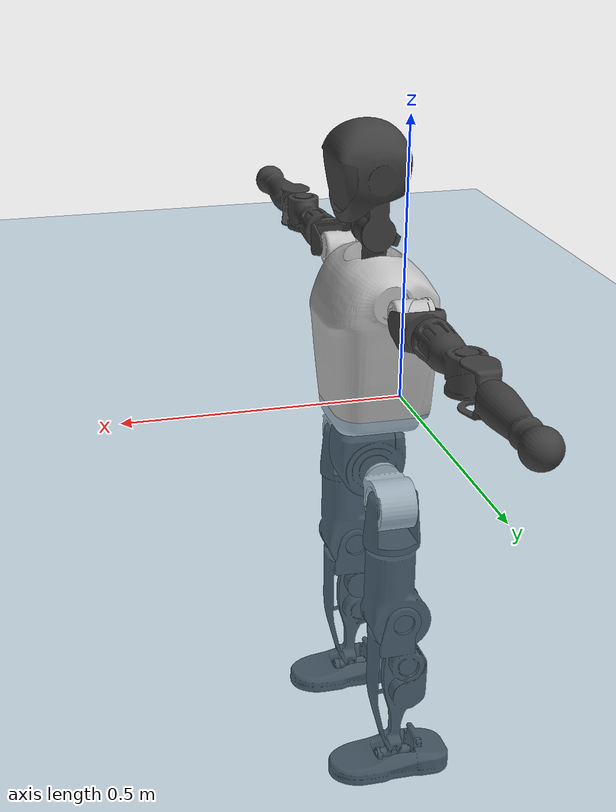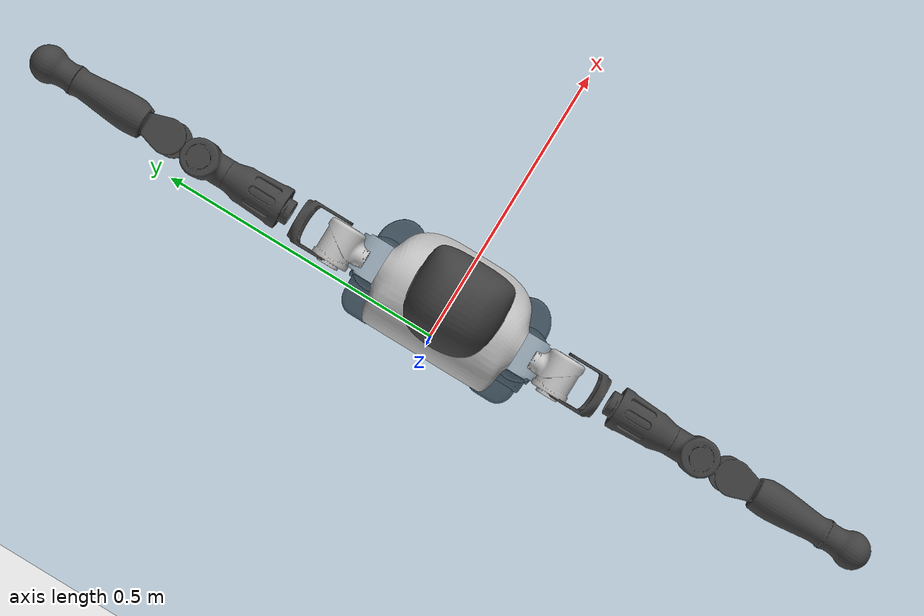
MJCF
<mujoco model="T1">
  <compiler angle="radian" assetdir="assets" balanceinertia="true" inertiafromgeom="false"/>

  <option timestep="0.005" density="1.2" viscosity="2e-05"/>

  <size nkey="1"/>

  <visual>
    <quality shadowsize="8192"/>
    <map shadowclip="0.5"/>
  </visual>

  <default>
    <default class="/">
      <joint armature="0.01" damping="0.01" frictionloss="0.1"/>
      <geom contype="0" conaffinity="0" group="1" solref="-1000 -80"/>
      <site size="0.01 0.005 0.005" group="5"/>
      <general forcelimited="true" biastype="affine" gainprm="25" biasprm="0 -25 -0.6"/>
      <default class="t1">
        <geom rgba="0.25 0.25 0.25 1"/>
        <default class="visual">
          <geom type="mesh" group="2"/>
        </default>
        <default class="collision">
          <geom group="3"/>
        </default>
        <default class="foot">
          <geom size="0.1115 0.05 0.015" type="box" condim="6" group="4" priority="1" solimp="0.015 1 0.015"/>
        </default>
        <default class="reward_collision_sphere">
          <geom group="5" rgba="1 0 0 1"/>
        </default>
      </default>
    </default>
  </default>

  <asset>
    <texture type="skybox" colorspace="auto" name="//unnamed_texture_0" builtin="gradient" rgb1="0.95 0.95 0.95" rgb2="0.95 0.95 0.95" width="100" height="600"/>
    <texture type="2d" colorspace="auto" name="texplane" builtin="checker" rgb1="0.345 0.575 0.748" rgb2="0.345 0.575 0.748" markrgb="1 1 1" width="512" height="512"/>
    <material name="MatPlane" class="/" texture="texplane" texuniform="true" texrepeat="2 2" specular="0.9"/>
    <mesh name="Trunk" class="/" file="Trunk.stl"/>
    <mesh name="H1" class="/" file="H1.stl"/>
    <mesh name="H2" class="/" file="H2.stl"/>
    <mesh name="AL1" class="/" file="AL1.stl"/>
    <mesh name="AL2" class="/" file="AL2.stl"/>
    <mesh name="AL3" class="/" file="AL3.stl"/>
    <mesh name="left_hand_link" class="/" file="left_hand_link.stl"/>
    <mesh name="AR1" class="/" file="AR1.stl"/>
    <mesh name="AR2" class="/" file="AR2.stl"/>
    <mesh name="AR3" class="/" file="AR3.stl"/>
    <mesh name="right_hand_link" class="/" file="right_hand_link.stl"/>
    <mesh name="Waist" class="/" file="Waist.stl"/>
    <mesh name="Hip_Pitch_Left" class="/" file="Hip_Pitch_Left.stl"/>
    <mesh name="Hip_Roll_Left" class="/" file="Hip_Roll_Left.stl"/>
    <mesh name="Hip_Yaw_Left" class="/" file="Hip_Yaw_Left.stl"/>
    <mesh name="Shank_Left" class="/" file="Shank_Left.stl"/>
    <mesh name="Ankle_Cross_Left" class="/" file="Ankle_Cross_Left.stl"/>
    <mesh name="left_foot_link" class="/" file="left_foot_link.stl"/>
    <mesh name="Hip_Pitch_Right" class="/" file="Hip_Pitch_Right.stl"/>
    <mesh name="Hip_Roll_Right" class="/" file="Hip_Roll_Right.stl"/>
    <mesh name="Hip_Yaw_Right" class="/" file="Hip_Yaw_Right.stl"/>
    <mesh name="Shank_Right" class="/" file="Shank_Right.stl"/>
    <mesh name="Ankle_Cross_Right" class="/" file="Ankle_Cross_Right.stl"/>
    <mesh name="right_foot_link" class="/" file="right_foot_link.stl"/>
  </asset>

  <worldbody>
    <geom name="floor" class="/" size="100 100 0.125" type="plane" group="0" material="MatPlane"/>
    <light name="toplight_shadow" class="/" pos="0 0 5" dir="0.0990148 0.0990148 -0.990148" type="directional" ambient="0.04 0.04 0.04" diffuse="0.55 0.55 0.55" specular="0.12 0.12 0.12"/>
    <light name="toplight_fill" class="/" pos="0 0 5" dir="0.0990148 0.0990148 -0.990148" type="directional" castshadow="false" ambient="0.04 0.04 0.04" diffuse="0.3 0.3 0.3" specular="0.08 0.08 0.08"/>
    <body name="trunk" childclass="t1" pos="0.000276207 -0.0026839 -0.00268877" quat="1 0.000406561 0.000105902 -1.48179e-07">
      <inertial pos="0.0529978 -0.00278344 0.106179" quat="0.999941 0.00637959 -0.00845284 -0.00257652" mass="15.6981" diaginertia="0.0651775 0.391889 0.0578026"/>
      <joint name="//unnamed_joint_0" type="free" armature="0" damping="0" frictionloss="0"/>
      <geom name="//unnamed_geom_1" class="visual" rgba="0.76 0.76 0.76 1" mesh="Trunk"/>
      <geom name="//unnamed_geom_2" class="collision" size="0.0838477 0.111797 0.167695" pos="0.0564354 0 0.122444" type="box"/>
      <geom name="//unnamed_geom_3" class="reward_collision_sphere" size="0.128566" pos="0.0564354 0 0.102037"/>
      <geom name="//unnamed_geom_4" class="reward_collision_sphere" size="0.0167695" pos="0.0564354 0.118401 0"/>
      <geom name="//unnamed_geom_5" class="reward_collision_sphere" size="0.0167695" pos="0.0564354 -0.118401 0"/>
      <geom name="//unnamed_geom_6" class="reward_collision_sphere" size="0.0167695" pos="0.0564354 0.149046 0.183666"/>
      <geom name="//unnamed_geom_7" class="reward_collision_sphere" size="0.0167695" pos="0.0564354 -0.149046 0.183666"/>
      <site name="imu" pos="-0.00982325 -0.0120273 0.0125167" size="0.0111797"/>
      <camera name="track" pos="0 -2.7859 0" quat="0.707107 0.707107 0 0" mode="trackcom"/>
      <camera name="ego_camera" pos="0.114752 0 0.428554" quat="-0.5 -0.5 0.5 0.5"/>
      <body name="H1" pos="0.0553858 0.000393072 0.246946" quat="1 6.22958e-05 -0.000127687 -3.02377e-05">
        <inertial pos="-0.000530851 -0.00486133 0.0567125" quat="0.763528 -0.0126073 -0.00187942 0.645649" mass="0.617732" diaginertia="0.000182413 0.00115977 0.000163441"/>
        <joint name="AAHead_yaw" pos="0 0 0" axis="0.00121631 -0.0124763 0.999921" range="-1.5744 1.59563" armature="0.0112381" damping="0.0151408" frictionloss="0.130226"/>
        <geom name="//unnamed_geom_8" class="visual" mesh="H1"/>
        <body name="H2" pos="0.00149681 -0.00283019 0.0630874" quat="1 8.28058e-05 7.23925e-05 -4.01735e-05">
          <inertial pos="0.00382126 0.00313878 0.0979694" quat="0.989071 0.0992031 -0.0726817 -0.0813296" mass="0.879862" diaginertia="0.00149752 0.0100897 0.00191134"/>
          <joint name="Head_pitch" pos="0 0 0" axis="0.0095228 -0.999944 0.00468205" range="-1.21435 0.349668" armature="0.0115523" damping="0.0084105" frictionloss="0.103698"/>
          <geom name="//unnamed_geom_9" class="visual" mesh="H2"/>
          <geom name="//unnamed_geom_10" class="collision" size="0.0894375" pos="0.0094059 0 0.11224"/>
          <geom name="//unnamed_geom_11" class="reward_collision_sphere" size="0.100617" pos="0.0188118 0 0.102037"/>
        </body>
      </body>
      <body name="AL1" pos="0.0533126 0.148599 0.221477" quat="1 -0.000242018 0.000845413 -0.000291518">
        <inertial pos="-0.000913211 0.0600646 -0.0027627" quat="0.506888 0.493314 -0.498869 0.500835" mass="0.742606" diaginertia="0.00103582 0.00663512 0.000323089"/>
        <joint name="Left_Shoulder_Pitch" pos="0 0 0" axis="0.00192616 0.999998 -0.000546253" range="-3.25765 1.21407" armature="0.011132" damping="0" frictionloss="0.109602"/>
        <geom name="//unnamed_geom_12" class="visual" rgba="0.76 0.76 0.76 1" mesh="AL1"/>
        <body name="AL2" pos="0.00147994 0.0653409 -0.00135515" quat="1 0.000156577 -0.000410028 0.000390735">
          <inertial pos="0.00225542 0.0502848 0.00196395" quat="0.498356 0.504007 -0.492103 0.505424" mass="0.230977" diaginertia="0.000292779 0.00181931 0.000192727"/>
          <joint name="Left_Shoulder_Roll" pos="0 0 0" axis="-0.999998 0.00182885 0.000323275" range="-1.56874 1.73759" armature="0.0127576" damping="0.0102317" frictionloss="0.0997217"/>
          <geom name="//unnamed_geom_13" class="visual" mesh="AL2"/>
          <body name="AL3" pos="-0.000189273 0.0812748 0.00243484" quat="1 0.00015777 0.000216012 -0.000121249">
            <inertial pos="0.00174615 0.118771 -0.00193494" quat="0.709506 0.70468 -0.00518206 -0.000544251" mass="1.43542" diaginertia="0.00915818 0.0686846 0.000708277"/>
            <joint name="Left_Elbow_Pitch" pos="0 0 0" axis="-0.00935 -0.999933 -0.00679896" stiffness="0.00813759" range="-2.24116 2.23816" armature="0.0101" damping="0.0167175" frictionloss="0.116688"/>
            <geom name="//unnamed_geom_14" class="visual" mesh="AL3"/>
            <geom name="//unnamed_geom_15" class="collision" size="0.0335391 0.0838477" pos="0 0.0696476 0" quat="0.707105 0.707108 0 0" type="cylinder"/>
            <geom name="//unnamed_geom_16" class="reward_collision_sphere" size="0.0402469"/>
            <body name="left_hand_link" pos="0.00257847 0.203548 0.00227609" quat="1 -0.00063606 0.000217855 0.000516028">
              <inertial pos="-7.92738e-05 0.151494 0.000771686" quat="0.713403 0.700673 -0.00351728 -0.010025" mass="0.465582" diaginertia="0.00599189 0.0428941 0.000233088"/>
              <joint name="Left_Elbow_Yaw" pos="0 0 0" axis="-0.0104796 0.0010774 0.999945" range="-2.41268 0.00537787" armature="0.0111763" damping="0.0236996" frictionloss="0.113199"/>
              <geom name="//unnamed_geom_17" class="visual" mesh="left_hand_link"/>
              <geom name="//unnamed_geom_18" class="collision" size="0.0335391 0.0978223" pos="0 0.181084 0" quat="0.707105 0.707108 0 0" type="cylinder"/>
              <geom name="//unnamed_geom_19" class="reward_collision_sphere" size="0.0558985"/>
              <geom name="//unnamed_geom_20" class="reward_collision_sphere" size="0.0391289" pos="0 0.153225 0"/>
              <geom name="//unnamed_geom_21" class="reward_collision_sphere" size="0.0391289" pos="0 0.299485 0"/>
            </body>
          </body>
        </body>
      </body>
      <body name="AR1" pos="0.0572136 -0.147256 0.22445" quat="1 -9.7656e-05 -0.00021744 0.000112655">
        <inertial pos="-0.00254096 -0.0632447 0.00159854" quat="0.499429 0.494196 -0.510358 0.495858" mass="0.760907" diaginertia="0.00103743 0.00721531 0.000339039"/>
        <joint name="Right_Shoulder_Pitch" pos="0 0 0" axis="-0.00698468 -0.999972 0.00261089" stiffness="0.000708756" range="-1.222 3.33028" armature="0.011707" damping="0.0137568" frictionloss="0.123656"/>
        <geom name="//unnamed_geom_22" class="visual" rgba="0.76 0.76 0.76 1" mesh="AR1"/>
        <body name="AR2" pos="0.00227353 -0.0643635 0.00280352" quat="1 -5.47282e-05 8.2614e-05 -0.000697522">
          <inertial pos="0.00156237 -0.049957 0.00235757" quat="0.51259 0.484869 -0.517805 0.483768" mass="0.232351" diaginertia="0.000312244 0.0019039 0.000205867"/>
          <joint name="Right_Shoulder_Roll" pos="0 0 0" axis="-0.999996 -0.00269965 -0.000960558" range="-1.72779 1.58781" armature="0.011153" damping="0.0212686" frictionloss="0.125835"/>
          <geom name="//unnamed_geom_23" class="visual" mesh="AR2"/>
          <body name="AR3" pos="0.00322567 -0.0819284 -0.0027718" quat="1 -0.000874428 2.85649e-05 0.000319847">
            <inertial pos="0.00247578 -0.119522 -0.00225633" quat="0.710741 0.703428 0.000519071 -0.0060918" mass="1.467" diaginertia="0.00966258 0.070802 0.000679225"/>
            <joint name="Right_Elbow_Pitch" pos="0 0 0" axis="-0.0126819 0.999911 0.00417614" range="-2.29778 2.3202" armature="0.0109954" damping="0.0124033" frictionloss="0.123161"/>
            <geom name="//unnamed_geom_24" class="visual" mesh="AR3"/>
            <geom name="//unnamed_geom_25" class="collision" size="0.0335391 0.0838477" pos="0 -0.0696476 0" quat="0.707105 0.707108 0 0" type="cylinder"/>
            <geom name="//unnamed_geom_26" class="reward_collision_sphere" size="0.0402469"/>
            <body name="right_hand_link" pos="0.00019866 -0.204644 -0.00267238" quat="1 0.000559544 0.000352552 0.000278677">
              <inertial pos="-0.000428167 -0.151506 0.00323176" quat="0.701547 0.71257 -0.00806105 -0.00326527" mass="0.453676" diaginertia="0.00632735 0.0449633 0.000236486"/>
              <joint name="Right_Elbow_Yaw" pos="0 0 0" axis="-0.000437687 5.51421e-05 1" range="0.0257518 2.45846" armature="0.0109888" damping="0.0125921" frictionloss="0.101891"/>
              <geom name="//unnamed_geom_27" class="visual" mesh="right_hand_link"/>
              <geom name="//unnamed_geom_28" class="collision" size="0.0335391 0.0978223" pos="0 -0.181084 0" quat="0.707105 0.707108 0 0" type="cylinder"/>
              <geom name="//unnamed_geom_29" class="reward_collision_sphere" size="0.0558985"/>
              <geom name="//unnamed_geom_30" class="reward_collision_sphere" size="0.0391289" pos="0 -0.153225 0"/>
              <geom name="//unnamed_geom_31" class="reward_collision_sphere" size="0.0391289" pos="0 -0.299485 0"/>
            </body>
          </body>
        </body>
      </body>
      <body name="Waist" pos="0.0572669 -0.00349185 -0.114851" quat="0.999999 -0.000851592 0.000717859 -0.000681936">
        <inertial pos="0.00563934 0.00197228 0.00959572" quat="0.982931 0.00194107 -0.183911 0.00454406" mass="3.49364" diaginertia="0.00398895 0.0272441 0.00529438"/>
        <joint name="Waist" pos="0 0 0" axis="0.00196957 -0.0139854 0.9999" range="-1.6105 1.55391" armature="0.0117295" damping="0.0210675" frictionloss="0.114336"/>
        <geom name="//unnamed_geom_32" class="visual" mesh="Waist"/>
        <body name="Hip_Pitch_Left" pos="0.00206501 0.149243 0.00169005" quat="0.999999 0.000847073 -0.000728258 0.000426454">
          <inertial pos="0.000338637 -0.0100631 -0.0174325" quat="0.977037 0.212275 0.0180865 0.00335089" mass="1.37929" diaginertia="0.00131848 0.00769171 0.00136263"/>
          <joint name="Left_Hip_Pitch" pos="0 0 0" axis="0.00147341 0.999997 -0.00218762" stiffness="0.00792546" range="-1.81281 1.53909" armature="0.0100559" damping="0.0218016" frictionloss="0.126851"/>
          <geom name="//unnamed_geom_33" class="visual" rgba="0.76 0.76 0.76 1" mesh="Hip_Pitch_Left"/>
          <body name="Hip_Roll_Left" pos="-0.00179428 -0.00253577 -0.0213679" quat="1 1.65295e-05 1.70028e-05 -5.04735e-06">
            <inertial pos="-0.00127384 -0.000430766 -0.0523168" quat="0.710099 -0.00119503 0.00325008 0.704093" mass="0.570556" diaginertia="0.0013267 0.00844996 0.000587216"/>
            <joint name="Left_Hip_Roll" pos="0 0 0" axis="-0.999996 -0.00253826 0.00131209" range="-1.57436 0.243908" armature="0.0104158" damping="0" frictionloss="0.100713"/>
            <geom name="//unnamed_geom_34" class="visual" mesh="Hip_Roll_Left"/>
            <geom name="//unnamed_geom_35" class="reward_collision_sphere" size="0.0614883"/>
            <body name="Hip_Yaw_Left" pos="-0.00132923 0.000890003 -0.087503" quat="1 -0.000451146 0.000318811 -0.000659702">
              <inertial pos="-0.00619071 0.00261447 -0.0931617" quat="0.698112 -0.0294455 -0.0342069 0.714565" mass="2.96154" diaginertia="0.0190766 0.137281 0.00289094"/>
              <joint name="Left_Hip_Yaw" pos="0 0 0" axis="-0.00136967 0.00556497 -0.999984" range="-1.0456 0.984407" armature="0.0106896" damping="0" frictionloss="0.114846"/>
              <geom name="//unnamed_geom_36" class="visual" mesh="Hip_Yaw_Left"/>
              <geom name="//unnamed_geom_37" class="collision" size="0.0558985 0.0894375" type="cylinder"/>
              <body name="Shank_Left" pos="-0.0158291 0.000586948 -0.131877" quat="1 0.000243356 0.000302031 -0.00030449">
                <inertial pos="-0.00774929 -6.28272e-05 -0.127851" quat="0.997607 0.00151003 -0.0234603 0.0650148" mass="2.53252" diaginertia="0.0256997 0.17973 0.00213431"/>
                <joint name="Left_Knee_Pitch" pos="0 0 0" axis="-0.0134518 0.999889 0.00643552" stiffness="0.00551621" range="0.0451803 2.28915" armature="0.0111887" damping="0.0114004" frictionloss="0.0988214"/>
                <geom name="//unnamed_geom_38" class="visual" mesh="Shank_Left"/>
                <geom name="//unnamed_geom_39" class="collision" size="0.0558985 0.0838477" pos="0 0 -0.122444" type="cylinder"/>
                <geom name="//unnamed_geom_40" class="reward_collision_sphere" size="0.072668"/>
                <body name="Ankle_Cross_Left" pos="0.00272032 0.00102979 -0.287137" quat="1 -0.000220003 0.00048668 -0.000313384">
                  <inertial pos="-0.005853 0.000790828 -0.00609369" quat="0.443966 0.551681 0.548836 0.444209" mass="0.101147" diaginertia="2.10184e-05 0.000130525 1.24426e-05"/>
                  <joint name="Left_Ankle_Pitch" pos="0 0 0" axis="-0.000216372 1 0.000382517" range="-0.900669 0.386682" armature="0.0100539" damping="0" frictionloss="0.126518"/>
                  <geom name="//unnamed_geom_41" class="visual" mesh="Ankle_Cross_Left"/>
                  <body name="left_foot_link" pos="-0.00404551 -0.00102929 -0.0148676" quat="0.999999 -0.000488528 -0.000337771 -0.000995028">
                    <inertial pos="-0.000758328 -0.000192929 -0.00916839" quat="0.0069218 0.61769 0.0106737 0.786319" mass="0.965905" diaginertia="0.00203072 0.0129134 0.0023433"/>
                    <joint name="Left_Ankle_Roll" pos="0 0 0" axis="-0.999972 -0.00365509 -0.00656767" range="-0.430399 0.436015" armature="0.0113353" damping="0" frictionloss="0.110695"/>
                    <geom name="//unnamed_geom_42" class="visual" mesh="left_foot_link"/>
                    <geom name="left_foot" class="foot" size="0.121804 0.0464283 0.0167339" pos="0.0094059 0 -0.0153055"/>
                    <geom name="//unnamed_geom_44" class="reward_collision_sphere" size="0.0581344" pos="0.0094059 0 -0.0153055"/>
                    <geom name="//unnamed_geom_45" class="reward_collision_sphere" size="0.0335391" pos="0.089356 -0.0320379 -0.0153055"/>
                    <geom name="//unnamed_geom_46" class="reward_collision_sphere" size="0.0335391" pos="-0.0658413 -0.0320379 -0.0153055"/>
                    <site name="left_foot" class="foot" pos="0.0094059 0 -0.0153055" size="0.0111797"/>
                  </body>
                </body>
              </body>
            </body>
          </body>
        </body>
        <body name="Hip_Pitch_Right" pos="-0.000959628 -0.14504 0.00267115" quat="1 0.000193062 -7.61925e-05 -0.000633716">
          <inertial pos="0.000323491 0.00780723 -0.0190689" quat="0.97424 -0.22544 0.00464535 0.00356011" mass="1.44466" diaginertia="0.00134557 0.00752943 0.00145705"/>
          <joint name="Right_Hip_Pitch" pos="0 0 0" axis="0.00840058 -0.999964 0.00116589" stiffness="0.00906932" range="-1.57769 1.85195" armature="0.0104725" damping="0.0125765" frictionloss="0.111132"/>
          <geom name="//unnamed_geom_47" class="visual" rgba="0.76 0.76 0.76 1" mesh="Hip_Pitch_Right"/>
          <body name="Hip_Roll_Right" pos="-0.00222775 -0.00104241 -0.0198382" quat="0.999999 0.000383936 -0.00108907 0.000369395">
            <inertial pos="0.000629179 0.00269075 -0.0532769" quat="0.7048 -0.00204702 -0.0161427 0.70922" mass="0.521263" diaginertia="0.00127738 0.00792346 0.000572097"/>
            <joint name="Right_Hip_Roll" pos="0 0 0" axis="-0.999998 -0.000145563 0.00200539" stiffness="0.00151371" range="-0.262547 1.51663" armature="0.0113337" damping="0.00997214" frictionloss="0.123898"/>
            <geom name="//unnamed_geom_48" class="visual" mesh="Hip_Roll_Right"/>
            <geom name="//unnamed_geom_49" class="reward_collision_sphere" size="0.0614883"/>
            <body name="Hip_Yaw_Right" pos="-0.00166763 -0.00259334 -0.0816531" quat="1 0.000453714 0.000115606 -0.000298043">
              <inertial pos="-0.00779867 -0.00221757 -0.0893452" quat="0.712599 -0.0257404 -0.0455691 0.699617" mass="3.21363" diaginertia="0.0194879 0.140276 0.00289429"/>
              <joint name="Right_Hip_Yaw" pos="0 0 0" axis="-0.0164284 -0.00272967 -0.999861" range="-0.977002 1.04924" armature="0.0108313" damping="0.0245225" frictionloss="0.110287"/>
              <geom name="//unnamed_geom_50" class="visual" mesh="Hip_Yaw_Right"/>
              <geom name="//unnamed_geom_51" class="collision" size="0.0558985 0.0894375" type="cylinder"/>
              <body name="Shank_Right" pos="-0.0132861 -0.000632671 -0.137576" quat="1 0.00018263 0.000736143 0.000521912">
                <inertial pos="-0.00612628 -0.00134702 -0.125445" quat="0.999393 0.000451205 -0.0205269 -0.0281496" mass="2.41409" diaginertia="0.0241224 0.172016 0.00210475"/>
                <joint name="Right_Knee_Pitch" pos="0 0 0" axis="0.000300338 -1 -0.000134403" stiffness="0.00326616" range="-2.36932 0.0447164" armature="0.00997581" damping="0.015651" frictionloss="0.109228"/>
                <geom name="//unnamed_geom_52" class="visual" mesh="Shank_Right"/>
                <geom name="//unnamed_geom_53" class="collision" size="0.0558985 0.0838477" pos="0 0 -0.122444" type="cylinder"/>
                <geom name="//unnamed_geom_54" class="reward_collision_sphere" size="0.072668"/>
                <body name="Ankle_Cross_Right" pos="-0.00129829 0.0022188 -0.282786" quat="1 -8.60596e-05 -0.00015843 0.00021248">
                  <inertial pos="-0.00269446 -0.00135795 -0.00826637" quat="0.454124 0.551738 0.544363 0.439347" mass="0.107747" diaginertia="2.11952e-05 0.000133959 1.32579e-05"/>
                  <joint name="Right_Ankle_Pitch" pos="0 0 0" axis="0.0097661 -0.999949 -0.00259387" stiffness="0.00475822" range="-0.340037 0.884017" armature="0.0110809" damping="0.0152466" frictionloss="0.0990996"/>
                  <geom name="//unnamed_geom_55" class="visual" mesh="Ankle_Cross_Right"/>
                  <body name="right_foot_link" pos="-0.0014308 -0.000202928 -0.0127474" quat="1 4.86848e-05 5.8306e-05 -0.000168912">
                    <inertial pos="0.00233854 -0.00231896 -0.00903575" quat="0.00176098 0.620719 0.000718842 0.784031" mass="0.952269" diaginertia="0.00197714 0.0123368 0.002409"/>
                    <joint name="Right_Ankle_Roll" pos="0 0 0" axis="-0.999986 -0.00476155 -0.00247081" range="-0.400182 0.435213" armature="0.0116441" damping="0.0162484" frictionloss="0.119887"/>
                    <geom name="//unnamed_geom_56" class="visual" mesh="right_foot_link"/>
                    <geom name="right_foot" class="foot" size="0.100552 0.0480873 0.0151416" pos="0.0094059 0 -0.0153055"/>
                    <geom name="//unnamed_geom_58" class="reward_collision_sphere" size="0.0447188"/>
                    <geom name="//unnamed_geom_59" class="reward_collision_sphere" size="0.0335391" pos="0.0094059 0 -0.0153055"/>
                    <geom name="//unnamed_geom_60" class="reward_collision_sphere" size="0.0335391" pos="0.089356 0.0320379 -0.0153055"/>
                    <geom name="//unnamed_geom_61" class="reward_collision_sphere" size="0.0335391" pos="-0.0658413 0.0320379 -0.0153055"/>
                    <site name="right_foot" class="foot" pos="0.0094059 0 -0.0153055" size="0.0111797"/>
                  </body>
                </body>
              </body>
            </body>
          </body>
        </body>
      </body>
    </body>
  </worldbody>

  <contact>
    <pair class="/" geom1="floor" geom2="left_foot" name="//unnamed_contact_0"/>
    <pair class="/" geom1="floor" geom2="right_foot" name="//unnamed_contact_1"/>
  </contact>

  <actuator>
    <general name="AAHead_yaw" class="/" joint="AAHead_yaw" forcerange="-8.60997 8.60997" gainprm="27.3463" biasprm="0 -27.3463 -0.621106"/>
    <general name="Head_pitch" class="/" joint="Head_pitch" forcerange="-7.86774 7.86774" gainprm="27.3463" biasprm="0 -27.3463 -0.621106"/>
    <general name="Left_Shoulder_Pitch" class="/" joint="Left_Shoulder_Pitch" forcerange="-18.5454 18.5454" gainprm="27.3463" biasprm="0 -27.3463 -0.621106"/>
    <general name="Left_Shoulder_Roll" class="/" joint="Left_Shoulder_Roll" forcerange="-17.9358 17.9358" gainprm="27.3463" biasprm="0 -27.3463 -0.621106"/>
    <general name="Left_Elbow_Pitch" class="/" joint="Left_Elbow_Pitch" forcerange="-20.5312 20.5312" gainprm="27.3463" biasprm="0 -27.3463 -0.621106"/>
    <general name="Left_Elbow_Yaw" class="/" joint="Left_Elbow_Yaw" forcerange="-18.2485 18.2485" gainprm="27.3463" biasprm="0 -27.3463 -0.621106"/>
    <general name="Right_Shoulder_Pitch" class="/" joint="Right_Shoulder_Pitch" forcerange="-22.472 22.472" gainprm="27.3463" biasprm="0 -27.3463 -0.621106"/>
    <general name="Right_Shoulder_Roll" class="/" joint="Right_Shoulder_Roll" forcerange="-18.5544 18.5544" gainprm="27.3463" biasprm="0 -27.3463 -0.621106"/>
    <general name="Right_Elbow_Pitch" class="/" joint="Right_Elbow_Pitch" forcerange="-18.9211 18.9211" gainprm="27.3463" biasprm="0 -27.3463 -0.621106"/>
    <general name="Right_Elbow_Yaw" class="/" joint="Right_Elbow_Yaw" forcerange="-22.0767 22.0767" gainprm="27.3463" biasprm="0 -27.3463 -0.621106"/>
    <general name="Waist" class="/" joint="Waist" forcerange="-37.2997 37.2997" gainprm="27.3463" biasprm="0 -27.3463 -0.621106"/>
    <general name="Left_Hip_Pitch" class="/" joint="Left_Hip_Pitch" forcerange="-48.7691 48.7691" gainprm="27.3463" biasprm="0 -27.3463 -0.621106"/>
    <general name="Left_Hip_Roll" class="/" joint="Left_Hip_Roll" forcerange="-34.1324 34.1324" gainprm="27.3463" biasprm="0 -27.3463 -0.621106"/>
    <general name="Left_Hip_Yaw" class="/" joint="Left_Hip_Yaw" forcerange="-33.6237 33.6237" gainprm="27.3463" biasprm="0 -27.3463 -0.621106"/>
    <general name="Left_Knee_Pitch" class="/" joint="Left_Knee_Pitch" forcerange="-69.9808 69.9808" gainprm="27.3463" biasprm="0 -27.3463 -0.621106"/>
    <general name="Left_Ankle_Pitch" class="/" joint="Left_Ankle_Pitch" forcerange="-23.1205 23.1205" gainprm="27.3463" biasprm="0 -27.3463 -0.621106"/>
    <general name="Left_Ankle_Roll" class="/" joint="Left_Ankle_Roll" forcerange="-16.3175 16.3175" gainprm="27.3463" biasprm="0 -27.3463 -0.621106"/>
    <general name="Right_Hip_Pitch" class="/" joint="Right_Hip_Pitch" forcerange="-50.3484 50.3484" gainprm="27.3463" biasprm="0 -27.3463 -0.621106"/>
    <general name="Right_Hip_Roll" class="/" joint="Right_Hip_Roll" forcerange="-32.324 32.324" gainprm="27.3463" biasprm="0 -27.3463 -0.621106"/>
    <general name="Right_Hip_Yaw" class="/" joint="Right_Hip_Yaw" forcerange="-31.0149 31.0149" gainprm="27.3463" biasprm="0 -27.3463 -0.621106"/>
    <general name="Right_Knee_Pitch" class="/" joint="Right_Knee_Pitch" forcerange="-66.4798 66.4798" gainprm="27.3463" biasprm="0 -27.3463 -0.621106"/>
    <general name="Right_Ankle_Pitch" class="/" joint="Right_Ankle_Pitch" forcerange="-20.6598 20.6598" gainprm="27.3463" biasprm="0 -27.3463 -0.621106"/>
    <general name="Right_Ankle_Roll" class="/" joint="Right_Ankle_Roll" forcerange="-15.6359 15.6359" gainprm="27.3463" biasprm="0 -27.3463 -0.621106"/>
  </actuator>

  <sensor>
    <gyro site="imu" name="imu_angular_velocity"/>
    <velocimeter site="imu" name="imu_linear_velocity"/>
    <framelinvel objtype="site" objname="left_foot" name="left_foot_global_linear_velocity"/>
    <framelinvel objtype="site" objname="right_foot" name="right_foot_global_linear_velocity"/>
  </sensor>

  <keyframe>
    <key name="home" qpos="0 0 0.6385 1 0 0 0 0 0 0 1.4 0 -0.4 0 -1.4 0 0.4 0 -0.4 0 0 0.8 -0.4 0 0.4 0 0 -0.8 0.4 0"/>
  </keyframe>
</mujoco>
